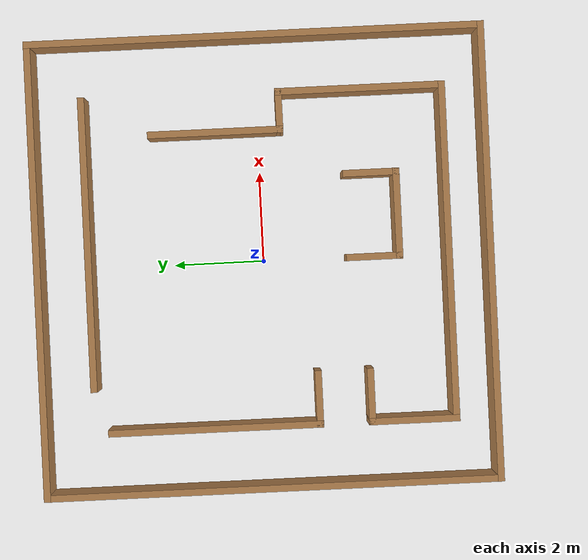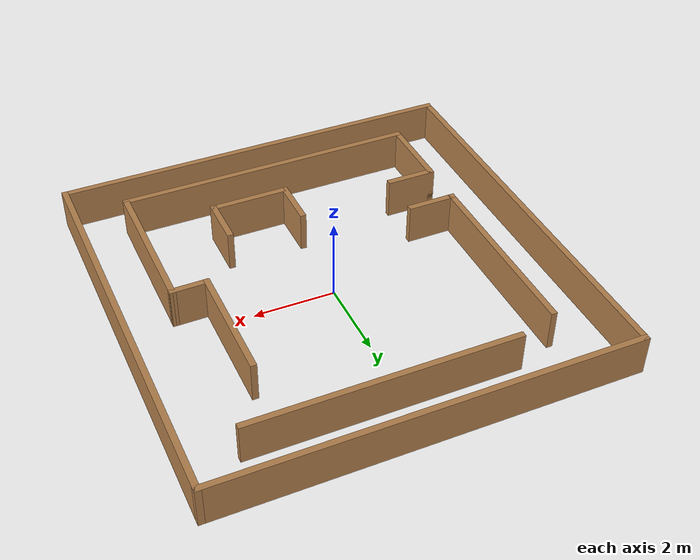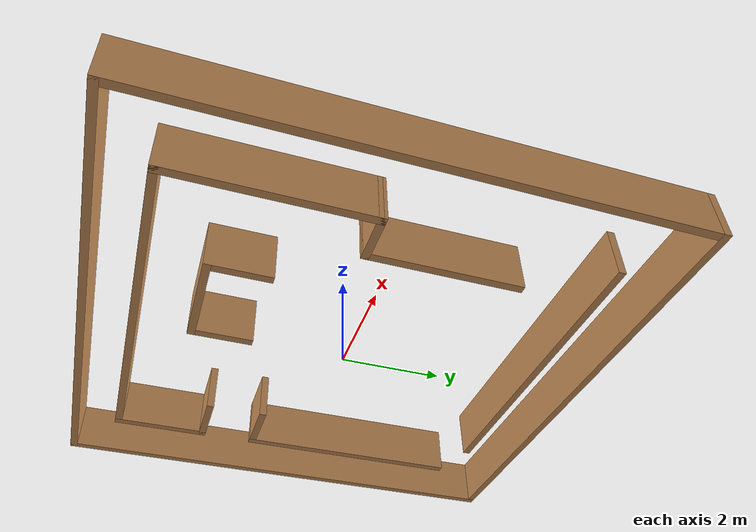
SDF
<?xml version='1.0'?>
<sdf version='1.7'>
  <model name='rc'>
    <pose>0 0 0 0 -0 0</pose>
    <link name='Wall_2'>
      <collision name='Wall_2_Collision'>
        <geometry>
          <box>
            <size>10.15 0.15 1</size>
          </box>
        </geometry>
        <pose>0 0 0.5 0 -0 0</pose>
      </collision>
      <visual name='Wall_2_Visual'>
        <pose>0 0 0.5 0 -0 0</pose>
        <geometry>
          <box>
            <size>10.15 0.15 1</size>
          </box>
        </geometry>
        <material>
          <script>
            <uri>file://media/materials/scripts/gazebo.material</uri>
            <name>Gazebo/Wood</name>
          </script>
          <ambient>1 1 1 1</ambient>
        </material>
        <meta>
          <layer>0</layer>
        </meta>
      </visual>
      <pose>0 -5 0 0 -0 0</pose>
    </link>
    <link name='Wall_27'>
      <collision name='Wall_27_Collision'>
        <geometry>
          <box>
            <size>6.5 0.15 1</size>
          </box>
        </geometry>
        <pose>0 0 0.5 0 -0 0</pose>
      </collision>
      <visual name='Wall_27_Visual'>
        <pose>0 0 0.5 0 -0 0</pose>
        <geometry>
          <box>
            <size>6.5 0.15 1</size>
          </box>
        </geometry>
        <material>
          <script>
            <uri>file://media/materials/scripts/gazebo.material</uri>
            <name>Gazebo/Wood</name>
          </script>
          <ambient>1 1 1 1</ambient>
        </material>
        <meta>
          <layer>0</layer>
        </meta>
      </visual>
      <pose>0.539 3.864 0 0 -0 0</pose>
    </link>
    <link name='Wall_30'>
      <collision name='Wall_30_Collision'>
        <geometry>
          <box>
            <size>3 0.15 1</size>
          </box>
        </geometry>
        <pose>0 0 0.5 0 -0 0</pose>
      </collision>
      <visual name='Wall_30_Visual'>
        <pose>0 0 0.5 0 -0 0</pose>
        <geometry>
          <box>
            <size>3 0.15 1</size>
          </box>
        </geometry>
        <material>
          <script>
            <uri>file://media/materials/scripts/gazebo.material</uri>
            <name>Gazebo/Wood</name>
          </script>
          <ambient>1 1 1 1</ambient>
        </material>
        <meta>
          <layer>0</layer>
        </meta>
      </visual>
      <pose>2.892 0.937 0 0 -0 -1.5708</pose>
    </link>
    <link name='Wall_32'>
      <collision name='Wall_32_Collision'>
        <geometry>
          <box>
            <size>4.75 0.15 1</size>
          </box>
        </geometry>
        <pose>0 0 0.5 0 -0 0</pose>
      </collision>
      <visual name='Wall_32_Visual'>
        <pose>0 0 0.5 0 -0 0</pose>
        <geometry>
          <box>
            <size>4.75 0.15 1</size>
          </box>
        </geometry>
        <material>
          <script>
            <uri>file://media/materials/scripts/gazebo.material</uri>
            <name>Gazebo/Wood</name>
          </script>
          <ambient>1 1 1 1</ambient>
        </material>
        <meta>
          <layer>0</layer>
        </meta>
      </visual>
      <pose>-3.631 1.217 0 0 -0 -1.5708</pose>
    </link>
    <link name='Wall_35'>
      <collision name='Wall_35_Collision'>
        <geometry>
          <box>
            <size>2 0.15 1</size>
          </box>
        </geometry>
        <pose>0 0 0.5 0 -0 0</pose>
      </collision>
      <visual name='Wall_35_Visual'>
        <pose>0 0 0.5 0 -0 0</pose>
        <geometry>
          <box>
            <size>2 0.15 1</size>
          </box>
        </geometry>
        <material>
          <script>
            <uri>file://media/materials/scripts/gazebo.material</uri>
            <name>Gazebo/Wood</name>
          </script>
          <ambient>1 1 1 1</ambient>
        </material>
        <meta>
          <layer>0</layer>
        </meta>
      </visual>
      <pose>-3.631 -3.158 0 0 -0 1.5708</pose>
    </link>
    <link name='Wall_37'>
      <collision name='Wall_37_Collision'>
        <geometry>
          <box>
            <size>7.5 0.15 1</size>
          </box>
        </geometry>
        <pose>0 0 0.5 0 -0 0</pose>
      </collision>
      <visual name='Wall_37_Visual'>
        <pose>0 0 0.5 0 -0 0</pose>
        <geometry>
          <box>
            <size>7.5 0.15 1</size>
          </box>
        </geometry>
        <material>
          <script>
            <uri>file://media/materials/scripts/gazebo.material</uri>
            <name>Gazebo/Wood</name>
          </script>
          <ambient>1 1 1 1</ambient>
        </material>
        <meta>
          <layer>0</layer>
        </meta>
      </visual>
      <pose>0.044 -4.083 0 0 -0 0</pose>
    </link>
    <link name='Wall_39'>
      <collision name='Wall_39_Collision'>
        <geometry>
          <box>
            <size>3.75 0.15 1</size>
          </box>
        </geometry>
        <pose>0 0 0.5 0 -0 0</pose>
      </collision>
      <visual name='Wall_39_Visual'>
        <pose>0 0 0.5 0 -0 0</pose>
        <geometry>
          <box>
            <size>3.75 0.15 1</size>
          </box>
        </geometry>
        <material>
          <script>
            <uri>file://media/materials/scripts/gazebo.material</uri>
            <name>Gazebo/Wood</name>
          </script>
          <ambient>1 1 1 1</ambient>
        </material>
        <meta>
          <layer>0</layer>
        </meta>
      </visual>
      <pose>3.719 -2.283 0 0 -0 1.5708</pose>
    </link>
    <link name='Wall_42'>
      <collision name='Wall_42_Collision'>
        <geometry>
          <box>
            <size>1.25 0.15 1</size>
          </box>
        </geometry>
        <pose>0 0 0.5 0 -0 0</pose>
      </collision>
      <visual name='Wall_42_Visual'>
        <pose>0 0 0.5 0 -0 0</pose>
        <geometry>
          <box>
            <size>1.25 0.15 1</size>
          </box>
        </geometry>
        <material>
          <script>
            <uri>file://media/materials/scripts/gazebo.material</uri>
            <name>Gazebo/Wood</name>
          </script>
          <ambient>1 1 1 1</ambient>
        </material>
        <meta>
          <layer>0</layer>
        </meta>
      </visual>
      <pose>-3.081 -1.083 0 0 -0 0</pose>
    </link>
    <link name='Wall_45'>
      <collision name='Wall_45_Collision'>
        <geometry>
          <box>
            <size>1.25 0.15 1</size>
          </box>
        </geometry>
        <pose>0 0 0.5 0 -0 0</pose>
      </collision>
      <visual name='Wall_45_Visual'>
        <pose>0 0 0.5 0 -0 0</pose>
        <geometry>
          <box>
            <size>1.25 0.15 1</size>
          </box>
        </geometry>
        <material>
          <script>
            <uri>file://media/materials/scripts/gazebo.material</uri>
            <name>Gazebo/Wood</name>
          </script>
          <ambient>1 1 1 1</ambient>
        </material>
        <meta>
          <layer>0</layer>
        </meta>
      </visual>
      <pose>-3.081 -2.233 0 0 -0 0</pose>
    </link>
    <link name='Wall_47'>
      <collision name='Wall_47_Collision'>
        <geometry>
          <box>
            <size>0.977155 0.15 1</size>
          </box>
        </geometry>
        <pose>0 0 0.5 0 -0 0</pose>
      </collision>
      <visual name='Wall_47_Visual'>
        <pose>0 0 0.5 0 -0 0</pose>
        <geometry>
          <box>
            <size>0.977155 0.15 1</size>
          </box>
        </geometry>
        <material>
          <script>
            <uri>file://media/materials/scripts/gazebo.material</uri>
            <name>Gazebo/Wood</name>
          </script>
          <ambient>1 1 1 1</ambient>
        </material>
        <meta>
          <layer>0</layer>
        </meta>
      </visual>
      <pose>3.3055 -0.4855 0 0 -0 0.006046</pose>
    </link>
    <link name='Wall_49'>
      <collision name='Wall_49_Collision'>
        <geometry>
          <box>
            <size>1.25 0.15 1</size>
          </box>
        </geometry>
        <pose>0 0 0.5 0 -0 0</pose>
      </collision>
      <visual name='Wall_49_Visual'>
        <pose>0 0 0.5 0 -0 0</pose>
        <geometry>
          <box>
            <size>1.25 0.15 1</size>
          </box>
        </geometry>
        <material>
          <script>
            <uri>file://media/materials/scripts/gazebo.material</uri>
            <name>Gazebo/Wood</name>
          </script>
          <ambient>1 1 1 1</ambient>
        </material>
        <meta>
          <layer>0</layer>
        </meta>
      </visual>
      <pose>0.001 -2.445 0 0 -0 -1.5708</pose>
    </link>
    <link name='Wall_5'>
      <collision name='Wall_5_Collision'>
        <geometry>
          <box>
            <size>10.15 0.15 1</size>
          </box>
        </geometry>
        <pose>0 0 0.5 0 -0 0</pose>
      </collision>
      <visual name='Wall_5_Visual'>
        <pose>0 0 0.5 0 -0 0</pose>
        <geometry>
          <box>
            <size>10.15 0.15 1</size>
          </box>
        </geometry>
        <material>
          <script>
            <uri>file://media/materials/scripts/gazebo.material</uri>
            <name>Gazebo/Wood</name>
          </script>
          <ambient>1 1 1 1</ambient>
        </material>
        <meta>
          <layer>0</layer>
        </meta>
      </visual>
      <pose>5 0 0 0 -0 1.5708</pose>
    </link>
    <link name='Wall_50'>
      <collision name='Wall_50_Collision'>
        <geometry>
          <box>
            <size>2 0.15 1</size>
          </box>
        </geometry>
        <pose>0 0 0.5 0 -0 0</pose>
      </collision>
      <visual name='Wall_50_Visual'>
        <pose>0 0 0.5 0 -0 0</pose>
        <geometry>
          <box>
            <size>2 0.15 1</size>
          </box>
        </geometry>
        <material>
          <script>
            <uri>file://media/materials/scripts/gazebo.material</uri>
            <name>Gazebo/Wood</name>
          </script>
          <ambient>1 1 1 1</ambient>
        </material>
        <meta>
          <layer>0</layer>
        </meta>
      </visual>
      <pose>0.926 -2.995 0 0 -0 0</pose>
    </link>
    <link name='Wall_51'>
      <collision name='Wall_51_Collision'>
        <geometry>
          <box>
            <size>1.25 0.15 1</size>
          </box>
        </geometry>
        <pose>0 0 0.5 0 -0 0</pose>
      </collision>
      <visual name='Wall_51_Visual'>
        <pose>0 0 0.5 0 -0 0</pose>
        <geometry>
          <box>
            <size>1.25 0.15 1</size>
          </box>
        </geometry>
        <material>
          <script>
            <uri>file://media/materials/scripts/gazebo.material</uri>
            <name>Gazebo/Wood</name>
          </script>
          <ambient>1 1 1 1</ambient>
        </material>
        <meta>
          <layer>0</layer>
        </meta>
      </visual>
      <pose>1.851 -2.445 0 0 -0 1.5708</pose>
    </link>
    <link name='Wall_6'>
      <collision name='Wall_6_Collision'>
        <geometry>
          <box>
            <size>10.15 0.15 1</size>
          </box>
        </geometry>
        <pose>0 0 0.5 0 -0 0</pose>
      </collision>
      <visual name='Wall_6_Visual'>
        <pose>0 0 0.5 0 -0 0</pose>
        <geometry>
          <box>
            <size>10.15 0.15 1</size>
          </box>
        </geometry>
        <material>
          <script>
            <uri>file://media/materials/scripts/gazebo.material</uri>
            <name>Gazebo/Wood</name>
          </script>
          <ambient>1 1 1 1</ambient>
        </material>
        <meta>
          <layer>0</layer>
        </meta>
      </visual>
      <pose>0 5 0 0 -0 3.14159</pose>
    </link>
    <link name='Wall_7'>
      <collision name='Wall_7_Collision'>
        <geometry>
          <box>
            <size>10.15 0.15 1</size>
          </box>
        </geometry>
        <pose>0 0 0.5 0 -0 0</pose>
      </collision>
      <visual name='Wall_7_Visual'>
        <pose>0 0 0.5 0 -0 0</pose>
        <geometry>
          <box>
            <size>10.15 0.15 1</size>
          </box>
        </geometry>
        <material>
          <script>
            <uri>file://media/materials/scripts/gazebo.material</uri>
            <name>Gazebo/Wood</name>
          </script>
          <ambient>1 1 1 1</ambient>
        </material>
        <meta>
          <layer>0</layer>
        </meta>
      </visual>
      <pose>-5 0 0 0 -0 -1.5708</pose>
    </link>
    <static>1</static>
  </model>
</sdf>
